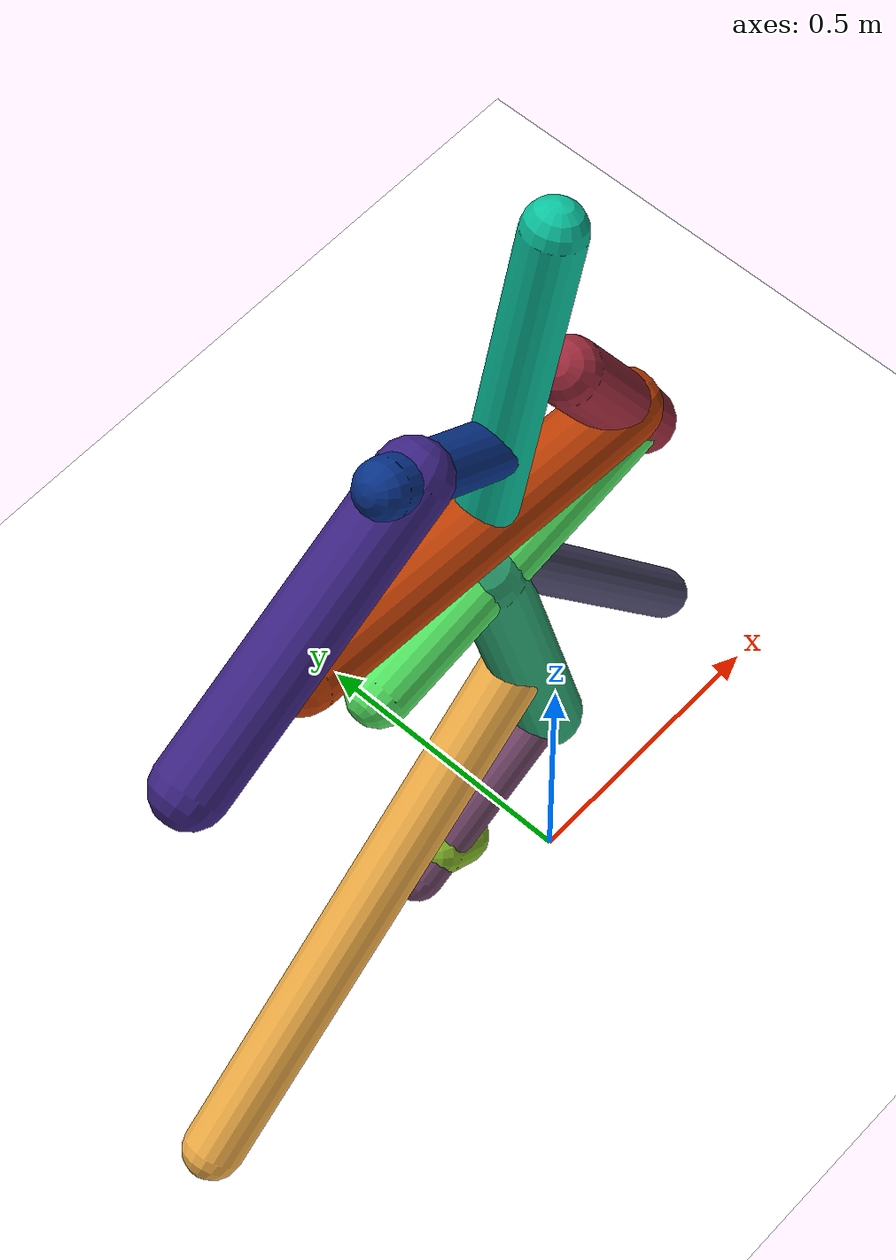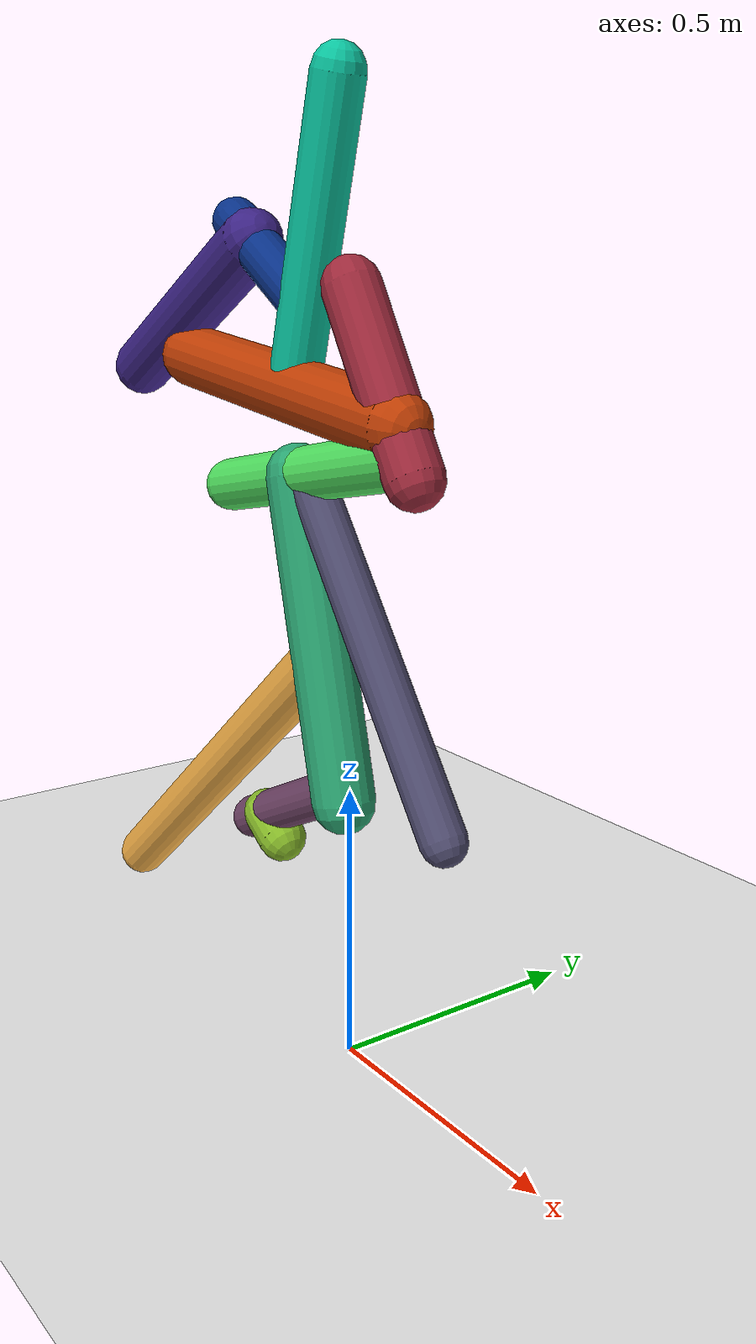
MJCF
<mujoco model="morphology">
  <option timestep="0.01"/>
  <default>
    <default class="/"/>
    <default class="0/"/>
    <default class="0/1/"/>
    <default class="0/1/2/"/>
    <default class="0/1/3/"/>
    <default class="0/1/3/4/"/>
    <default class="0/1/3/5/"/>
    <default class="0/1/3/5/6/"/>
    <default class="0/7/"/>
    <default class="0/7/8/"/>
    <default class="0/7/8/9/"/>
    <default class="0/7/8/9/10/"/>
  </default>
  <asset>
    <texture name="texplane" type="2d" builtin="checker" rgb1="0.10000000000000001 0.20000000000000001 0.29999999999999999" rgb2="0.20000000000000001 0.29999999999999999 0.40000000000000002" width="300" height="300"/>
    <material name="MatPlane" class="/" texture="texplane" texrepeat="20 20" specular="1" shininess="1" reflectance="0.5"/>
  </asset>
  <worldbody>
    <light name="//unnamed_light_0" class="/" directional="true" pos="0 0 1.5" dir="0 0 -1.3" cutoff="100" exponent="1" diffuse="1 1 1" specular="0.10000000000000001 0.10000000000000001 0.10000000000000001"/>
    <geom name="ground" class="/" type="plane" size="15 15 0.5" material="MatPlane" rgba="1 1 1 1"/>
    <site name="body" class="/" size="9.9999999999999995e-07 9.9999999999999995e-07 9.9999999999999995e-07" pos="0 0 1.3565473318099976"/>
    <body pos="0 0 1.3565473318099976" name="0/">
      <joint name="0/rootx/" class="/" type="slide" axis="1 0 0" limited="false" stiffness="0" armature="0" damping="0"/>
      <joint name="0/rootz/" class="/" type="slide" axis="0 0 1" limited="false" stiffness="0" armature="0" damping="0"/>
      <joint name="0/rooty/" class="/" type="hinge" axis="0 1 0" limited="false" stiffness="0" armature="0" damping="0"/>
      <geom name="0/geom" class="0/" type="capsule" contype="1" conaffinity="1" condim="3" size="0.050425689317266348" rgba="0.61854106402565079 0.16480074754242702 0.23577367089696233 1" friction="0.59999999999999998 0.10000000000000001 0.10000000000000001" fromto="0 0 0 0.17179047699559369 0 -0.29207786726894841"/>
      <site name="0/end0" class="0/" size="0.0050000000000000001" pos="0.17179047699559369 0 -0.29207786726894841"/>
      <site name="0/attach1" class="0/" size="9.9999999999999995e-07 9.9999999999999995e-07 9.9999999999999995e-07" pos="0.15366562078200194 0 -0.26126201856763764"/>
      <body pos="0.15366562078200194 0 -0.26126201856763764" name="0/1/">
        <joint name="0/1/joint/" class="0/" type="hinge" axis="0 1 0" limited="true" range="-43.923439235282991 43.923439235282991"/>
        <geom name="0/1/geom" class="0/1/" type="capsule" contype="1" conaffinity="1" condim="3" size="0.048520184900353522" rgba="0.3196363547494202 0.89408642845897357 0.3812070517446845 1" friction="0.59999999999999998 0.10000000000000001 0.10000000000000001" fromto="0 0 0 -0.5410844969298485 0 -0.10542168656129014"/>
        <site name="0/1/end1" class="0/1/" size="0.0050000000000000001" pos="-0.5410844969298485 0 -0.10542168656129014"/>
        <site name="0/1/attach2" class="0/1/" size="9.9999999999999995e-07 9.9999999999999995e-07 9.9999999999999995e-07" pos="-0.28079732820071812 0 -0.054708882048531013"/>
        <body pos="-0.28079732820071812 0 -0.054708882048531013" name="0/1/2/">
          <joint name="0/1/2/joint/" class="0/1/" type="hinge" axis="0 1 0" limited="true" range="-39.978324623341727 39.978324623341727"/>
          <geom name="0/1/2/geom" class="0/1/2/" type="capsule" contype="1" conaffinity="1" condim="3" size="0.040545829880745482" rgba="0.30578027540508512 0.29314096656993271 0.43040358794660871 1" friction="0.59999999999999998 0.10000000000000001 0.10000000000000001" fromto="0 0 0 0.38632728956305629 0 -0.54616535640360453"/>
          <site name="0/1/2/end2" class="0/1/2/" size="0.0050000000000000001" pos="0.38632728956305629 0 -0.54616535640360453"/>
        </body>
        <site name="0/1/attach3" class="0/1/" size="9.9999999999999995e-07 9.9999999999999995e-07 9.9999999999999995e-07" pos="-0.31406346117980982 0 -0.061190257626517086"/>
        <body pos="-0.31406346117980982 0 -0.061190257626517086" name="0/1/3/">
          <geom name="0/1/3/geom" class="0/1/3/" type="capsule" contype="1" conaffinity="1" condim="3" size="0.056931415039326611" rgba="0.16370866389602345 0.64276720232477702 0.44209331038651678 1" friction="0.59999999999999998 0.10000000000000001 0.10000000000000001" fromto="0 0 0 0.14075098230151739 0 -0.56165582355160237"/>
          <site name="0/1/3/end3" class="0/1/3/" size="0.0050000000000000001" pos="0.14075098230151739 0 -0.56165582355160237"/>
          <site name="0/1/3/attach4" class="0/1/3/" size="9.9999999999999995e-07 9.9999999999999995e-07 9.9999999999999995e-07" pos="0.077523391101204001 0 -0.30935104936024516"/>
          <body pos="0.077523391101204001 0 -0.30935104936024516" name="0/1/3/4/">
            <joint name="0/1/3/4/joint/" class="0/1/3/" type="hinge" axis="0 1 0" limited="true" range="-32.385666392405348 32.385666392405348"/>
            <geom name="0/1/3/4/geom" class="0/1/3/4/" type="capsule" contype="1" conaffinity="1" condim="3" size="0.050581832867158262" rgba="0.96829620072798417 0.69983945666919867 0.28588258709124437 1" friction="0.59999999999999998 0.10000000000000001 0.10000000000000001" fromto="0 0 0 -0.73110656277946573 0 -0.6247439957281582"/>
            <site name="0/1/3/4/end4" class="0/1/3/4/" size="0.0050000000000000001" pos="-0.73110656277946573 0 -0.6247439957281582"/>
          </body>
          <site name="0/1/3/attach5" class="0/1/3/" size="9.9999999999999995e-07 9.9999999999999995e-07 9.9999999999999995e-07" pos="0.13485064571471067 0 -0.53811099032411269"/>
          <body pos="0.13485064571471067 0 -0.53811099032411269" name="0/1/3/5/">
            <joint name="0/1/3/5/joint/" class="0/1/3/" type="hinge" axis="0 1 0" limited="true" range="-32.807938951838686 32.807938951838686"/>
            <geom name="0/1/3/5/geom" class="0/1/3/5/" type="capsule" contype="1" conaffinity="1" condim="3" size="0.040937097313628483" rgba="0.44418111324846554 0.27014639768529158 0.40955537911302864 1" friction="0.59999999999999998 0.10000000000000001 0.10000000000000001" fromto="0 0 0 -0.29977785238618254 0 -0.150911562160994"/>
            <site name="0/1/3/5/end5" class="0/1/3/5/" size="0.0050000000000000001" pos="-0.29977785238618254 0 -0.150911562160994"/>
            <site name="0/1/3/5/attach6" class="0/1/3/5/" size="9.9999999999999995e-07 9.9999999999999995e-07 9.9999999999999995e-07" pos="-0.25011527794426908 0 -0.12591086037362184"/>
            <body pos="-0.25011527794426908 0 -0.12591086037362184" name="0/1/3/5/6/">
              <joint name="0/1/3/5/6/joint/" class="0/1/3/5/" type="hinge" axis="0 1 0" limited="true" range="-56.332492437880674 56.332492437880674"/>
              <geom name="0/1/3/5/6/geom" class="0/1/3/5/6/" type="capsule" contype="1" conaffinity="1" condim="3" size="0.045487683518211822" rgba="0.52506415975933007 0.72511091838513997 0.15815753668971744 1" friction="0.59999999999999998 0.10000000000000001 0.10000000000000001" fromto="0 0 0 0.051588074816756424 0 -0.033933221785298784"/>
              <site name="0/1/3/5/6/end6" class="0/1/3/5/6/" size="0.0050000000000000001" pos="0.051588074816756424 0 -0.033933221785298784"/>
            </body>
          </body>
        </body>
      </body>
      <site name="0/attach7" class="0/" size="9.9999999999999995e-07 9.9999999999999995e-07 9.9999999999999995e-07" pos="0.12460089463129344 0 -0.21184622221314756"/>
      <body pos="0.12460089463129344 0 -0.21184622221314756" name="0/7/">
        <joint name="0/7/joint/" class="0/" type="hinge" axis="0 1 0" limited="true" range="-52.976991515886091 52.976991515886091"/>
        <geom name="0/7/geom" class="0/7/" type="capsule" contype="1" conaffinity="1" condim="3" size="0.058474948861402004" rgba="0.75208339996254225 0.24599757492454155 0.02016689650780179 1" friction="0.59999999999999998 0.10000000000000001 0.10000000000000001" fromto="0 0 0 -0.65295085698036603 0 0.07773769272873543"/>
        <site name="0/7/end7" class="0/7/" size="0.0050000000000000001" pos="-0.65295085698036603 0 0.07773769272873543"/>
        <site name="0/7/attach8" class="0/7/" size="9.9999999999999995e-07 9.9999999999999995e-07 9.9999999999999995e-07" pos="-0.29641191602059586 0 0.035289605951826918"/>
        <body pos="-0.29641191602059586 0 0.035289605951826918" name="0/7/8/">
          <joint name="0/7/8/joint/" class="0/7/" type="hinge" axis="0 1 0" limited="true" range="-64.222281686207992 64.222281686207992"/>
          <geom name="0/7/8/geom" class="0/7/8/" type="capsule" contype="1" conaffinity="1" condim="3" size="0.046149627595222273" rgba="0.035912627967889188 0.76253793655608315 0.62065539153048577 1" friction="0.59999999999999998 0.10000000000000001 0.10000000000000001" fromto="0 0 0 0.13583820134606794 0 0.50476133980747173"/>
          <site name="0/7/8/end8" class="0/7/8/" size="0.0050000000000000001" pos="0.13583820134606794 0 0.50476133980747173"/>
          <site name="0/7/8/attach9" class="0/7/8/" size="9.9999999999999995e-07 9.9999999999999995e-07 9.9999999999999995e-07" pos="0.038823205196783839 0 0.14426319604176843"/>
          <body pos="0.038823205196783839 0 0.14426319604176843" name="0/7/8/9/">
            <geom name="0/7/8/9/geom" class="0/7/8/9/" type="capsule" contype="1" conaffinity="1" condim="3" size="0.043069221948154102" rgba="0.031087484805249588 0.19181818281156415 0.52859697279445828 1" friction="0.59999999999999998 0.10000000000000001 0.10000000000000001" fromto="0 0 0 -0.22375738544443324 0 0.14147752557657678"/>
            <site name="0/7/8/9/end9" class="0/7/8/9/" size="0.0050000000000000001" pos="-0.22375738544443324 0 0.14147752557657678"/>
            <site name="0/7/8/9/attach10" class="0/7/8/9/" size="9.9999999999999995e-07 9.9999999999999995e-07 9.9999999999999995e-07" pos="-0.17077896908284323 0 0.10798028372725817"/>
            <body pos="-0.17077896908284323 0 0.10798028372725817" name="0/7/8/9/10/">
              <joint name="0/7/8/9/10/joint/" class="0/7/8/9/" type="hinge" axis="0 1 0" limited="true" range="-46.384088108880761 46.384088108880761"/>
              <geom name="0/7/8/9/10/geom" class="0/7/8/9/10/" type="capsule" contype="1" conaffinity="1" condim="3" size="0.056600426123276912" rgba="0.23809059896611762 0.14041056868037227 0.52263605379437661 1" friction="0.59999999999999998 0.10000000000000001 0.10000000000000001" fromto="0 0 0 -0.43532884032240926 0 -0.24103230586799196"/>
              <site name="0/7/8/9/10/end10" class="0/7/8/9/10/" size="0.0050000000000000001" pos="-0.43532884032240926 0 -0.24103230586799196"/>
            </body>
          </body>
        </body>
      </body>
      <camera name="0/side" class="0/" mode="trackcom" pos="0.40000000000000002 -4 0.20000000000000001" quat="0.70699999999999996 0.70699999999999996 0 0"/>
    </body>
  </worldbody>
  <actuator>
    <motor name="0/1/motor" class="0/1/" ctrllimited="true" ctrlrange="-1 1" gear="55" joint="0/1/joint/"/>
    <motor name="0/1/2/motor" class="0/1/2/" ctrllimited="true" ctrlrange="-1 1" gear="58" joint="0/1/2/joint/"/>
    <motor name="0/1/3/4/motor" class="0/1/3/4/" ctrllimited="true" ctrlrange="-1 1" gear="50" joint="0/1/3/4/joint/"/>
    <motor name="0/1/3/5/motor" class="0/1/3/5/" ctrllimited="true" ctrlrange="-1 1" gear="53" joint="0/1/3/5/joint/"/>
    <motor name="0/1/3/5/6/motor" class="0/1/3/5/6/" ctrllimited="true" ctrlrange="-1 1" gear="75" joint="0/1/3/5/6/joint/"/>
    <motor name="0/7/motor" class="0/7/" ctrllimited="true" ctrlrange="-1 1" gear="56" joint="0/7/joint/"/>
    <motor name="0/7/8/motor" class="0/7/8/" ctrllimited="true" ctrlrange="-1 1" gear="88" joint="0/7/8/joint/"/>
    <motor name="0/7/8/9/10/motor" class="0/7/8/9/10/" ctrllimited="true" ctrlrange="-1 1" gear="55" joint="0/7/8/9/10/joint/"/>
  </actuator>
  <sensor>
    <subtreelinvel name="velocity" body="0/"/>
  </sensor>
</mujoco>
